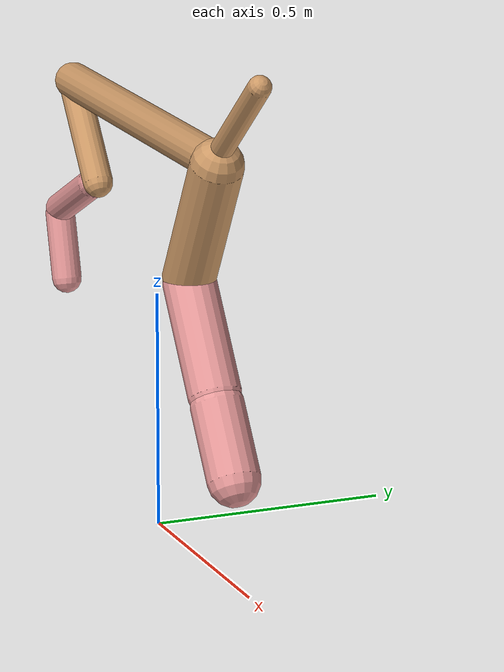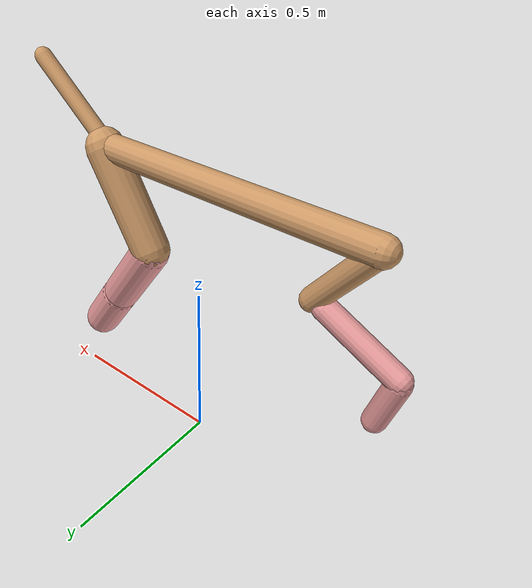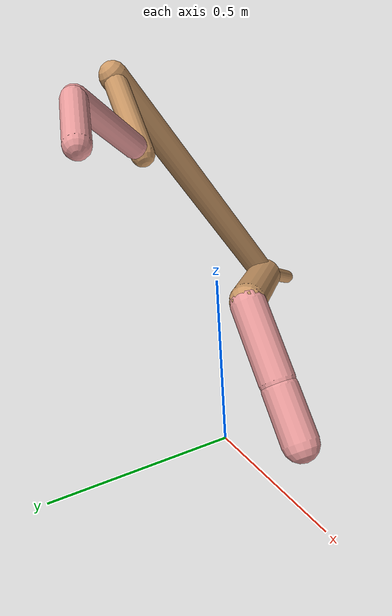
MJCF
<mujoco model="cheetah">
  <compiler angle="radian" coordinate="local" inertiafromgeom="true" settotalmass="14" />
  <default>
    <joint armature=".1" damping=".01" limited="true" solimplimit="0 .8 .03" solreflimit=".02 1" stiffness="8" />
    <geom conaffinity="0" condim="3" contype="1" friction="0.8 .1 .1" rgba="0.8 0.6 .4 1" solimp="0.0 0.8 0.01" solref="0.02 1" />
    <motor ctrllimited="true" ctrlrange="-1 1" />
  </default>
  <size nstack="300000" nuser_geom="1" />
  <option gravity="0 0 -9.81" timestep="0.01" />
  <worldbody>
    <body name="torso" pos="0.0 0.0 0.8513628165846349">
      <joint armature="0" axis="1 0 0" damping="0" limited="false" name="ignorex" pos="0 0 0" stiffness="0" type="slide" />
      <joint armature="0" axis="0 0 1" damping="0" limited="false" name="ignorez" pos="0 0 0" stiffness="0" type="slide" />
      <joint armature="0" axis="0 1 0" damping="0" limited="false" name="ignorey" pos="0 0 0" stiffness="0" type="hinge" />
      <geom fromto="-0.5 0.0 0.0 0.3356275362928782 0.0 0.0" name="torso" size="0.03945548965407414" type="capsule" />
      <geom axisangle="0 1 0 .87" name="head" pos="0.4356275362928782 0.0 0.1" size="0.023823028564700928 0.15" type="capsule" />

      <body name="bthigh" pos="-.5 0 0">
        <joint axis="0 1 0" damping="6" name="bthigh" pos="0 0 0" range="-.52 1.05" stiffness="240" type="hinge" />
        <geom axisangle="0 1 0 -3.8" name="bthigh" pos="0.08021360964690846 0.0 -0.10427769254098099" size="0.0322 0.11254790693620487" type="capsule" />
        <body name="bshin" pos="0.1204272192938169 0.0 -0.19855538508196197">
          <joint axis="0 1 0" damping="4.5" name="bshin" pos="0 0 0" range="-.785 .785" stiffness="180" type="hinge" />
          <geom axisangle="0 1 0 -2.03" name="bshin" pos="-0.10997306781953298 0.0 -0.05498653390976649" rgba="0.9 0.6 0.6 1" size="0.0322 0.11642886924434986" type="capsule" />
          <body name="bfoot" pos="-0.21994613563906595 0.0 -0.10997306781953298">
            <joint axis="0 1 0" damping="3" name="bfoot" pos="0 0 0" range="-.4 .785" stiffness="120" type="hinge" />
            <geom axisangle="0 1 0 -.27" name="bfoot" pos="0.023783934973067133 0.0 -0.0769013897462504" rgba="0.9 0.6 0.6 1" size="0.0322 0.07296209139312591" type="capsule" />
            <inertial mass="10" />
          </body>
        </body>
      </body>
      <body name="fthigh" pos="0.3356275362928782 0.0 0.0">
        <joint axis="0 1 0" damping="4.5" name="fthigh" pos="0 0 0" range="-1.5 0.8" stiffness="180" type="hinge" />
        <geom axisangle="0 1 0 .52" name="fthigh" pos="-0.08061041412477928 0.0 -0.13818928135676445" size="0.05521372331214014 0.15405779770476616" type="capsule" />
        <body name="fshin" pos="-0.16122082824955855 0.0 -0.2763785627135289">
          <joint axis="0 1 0" damping="3" name="fshin" pos="0 0 0" range="-1.2 1.1" stiffness="120" type="hinge" />
          <geom axisangle="0 1 0 -.6" name="fshin" pos="0.07482623318748899 0.0 -0.10360555364421552" rgba="0.9 0.6 0.6 1" size="0.05521372331214014 0.12278290644139256" type="capsule" />
          <body name="ffoot" pos="0.14965246637497798 0.0 -0.20721110728843103">
            <joint axis="0 1 0" damping="1.5" name="ffoot" pos="0 0 0" range="-3.1 -0.3" stiffness="60" type="hinge" />
            <geom axisangle="0 1 0 -.6" name="ffoot" pos="0.05099324419220856 0.0 -0.07932282429899111" rgba="0.9 0.6 0.6 1" size="0.05521372331214014 0.08108305142356113" type="capsule" />
            <inertial mass="10" />
          </body>
        </body>
      </body>
    </body>
  </worldbody>
  <actuator>
    <motor gear="120" joint="bthigh" name="bthigh" />
    <motor gear="90" joint="bshin" name="bshin" />
    <motor gear="60" joint="bfoot" name="bfoot" />
    <motor gear="120" joint="fthigh" name="fthigh" />
    <motor gear="60" joint="fshin" name="fshin" />
    <motor gear="30" joint="ffoot" name="ffoot" />
  </actuator>
</mujoco>
